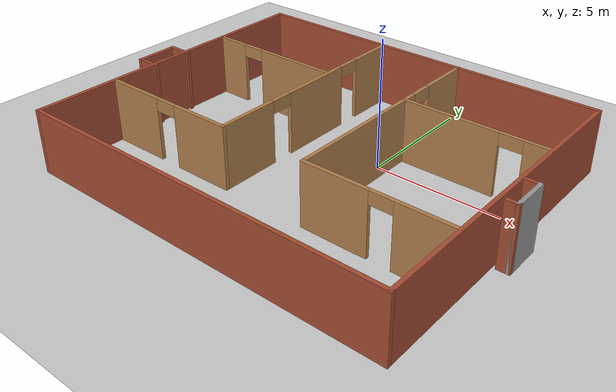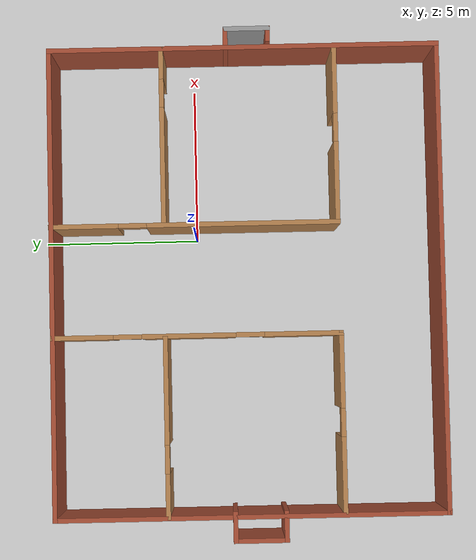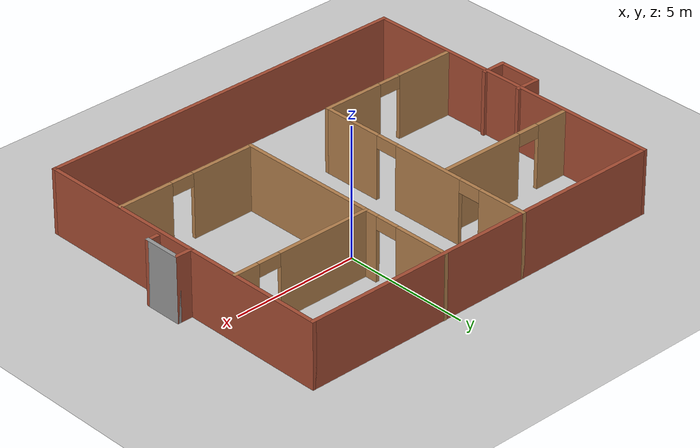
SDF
<sdf version="1.7">
 <world name="default">
  <light name="sun" type="directional">
   <pose>0 0 10 0 -0 0</pose>
   <diffuse>0.8 0.8 0.8 1</diffuse>
   <specular>0.2 0.2 0.2 1</specular>
   <attenuation>
    <range>1000</range>
    <constant>0.9</constant>
    <linear>0.01</linear>
    <quadratic>0.001</quadratic>
   </attenuation>
   <direction>-0.5 0.1 -0.9</direction>
   <spot><inner_angle>0</inner_angle><outer_angle>0</outer_angle><falloff>0</falloff></spot>
  </light>
  <model name="ground_plane">
   <static>1</static>
   <link name="link">
    <collision name="collision">
     <geometry><plane><normal>0 0 1</normal><size>100 100</size></plane></geometry>
     <surface><friction><ode><mu>100</mu><mu2>50</mu2></ode></friction></surface>
    </collision>
    <visual name="visual">
     <cast_shadows>0</cast_shadows>
     <geometry><plane><normal>0 0 1</normal><size>100 100</size></plane></geometry>
     <material>
      <script><uri>file://media/materials/scripts/gazebo.material</uri><name>Gazebo/Grey</name></script>
     </material>
    </visual>
   </link>
  </model>
  <gravity>0 0 -9.8</gravity>
  <magnetic_field>6e-06 2.3e-05 -4.2e-05</magnetic_field>
  <atmosphere type="adiabatic"/>
  <physics type="ode">
   <max_step_size>0.001</max_step_size>
   <real_time_factor>1</real_time_factor>
   <real_time_update_rate>1000</real_time_update_rate>
  </physics>
  <scene><ambient>0.4 0.4 0.4 1</ambient><background>0.7 0.7 0.7 1</background><shadows>1</shadows></scene>
  <audio><device>default</device></audio>
  <spherical_coordinates>
   <surface_model>EARTH_WGS84</surface_model>
   <latitude_deg>0</latitude_deg>
   <longitude_deg>0</longitude_deg>
   <elevation>0</elevation>
   <heading_deg>0</heading_deg>
  </spherical_coordinates>
  <model name="my_building">
   <pose>-1.51575 -1.5769 0 0 -0 0</pose>
   <link name="Wall_0">
    <collision name="Wall_0_Collision">
     <geometry><box><size>15 0.15 2.5</size></box></geometry>
     <pose>0 0 1.25 0 -0 0</pose>
    </collision>
    <visual name="Wall_0_Visual">
     <pose>0 0 1.25 0 -0 0</pose>
     <geometry><box><size>15 0.15 2.5</size></box></geometry>
     <material>
      <script><uri>file://media/materials/scripts/gazebo.material</uri><name>Gazebo/Bricks</name></script>
      <ambient>1 1 1 1</ambient>
     </material>
     <meta><layer>0</layer></meta>
    </visual>
    <pose>0.072998 6.16625 0 0 -0 0</pose>
   </link>
   <link name="Wall_1">
    <collision name="Wall_1_Collision">
     <geometry><box><size>12.5 0.15 2.5</size></box></geometry>
     <pose>0 0 1.25 0 -0 0</pose>
    </collision>
    <visual name="Wall_1_Visual">
     <pose>0 0 1.25 0 -0 0</pose>
     <geometry><box><size>12.5 0.15 2.5</size></box></geometry>
     <material>
      <script><uri>file://media/materials/scripts/gazebo.material</uri><name>Gazebo/Bricks</name></script>
      <ambient>1 1 1 1</ambient>
     </material>
     <meta><layer>0</layer></meta>
    </visual>
    <pose>7.498 -0.008745 0 0 -0 -1.5708</pose>
   </link>
   <link name="Wall_10">
    <pose>1.86526 1.63375 0 0 -0 -1.5708</pose>
    <visual name="Wall_10_Visual_0">
     <pose>-3.51823 0 1.25 0 -0 0</pose>
     <geometry><box><size>2.21353 0.15 2.5</size></box></geometry>
     <material>
      <script><uri>file://media/materials/scripts/gazebo.material</uri><name>Gazebo/Wood</name></script>
      <ambient>1 1 1 1</ambient>
     </material>
     <meta><layer>0</layer></meta>
    </visual>
    <collision name="Wall_10_Collision_0">
     <geometry><box><size>2.21353 0.15 2.5</size></box></geometry>
     <pose>-3.51823 0 1.25 0 -0 0</pose>
    </collision>
    <visual name="Wall_10_Visual_1">
     <pose>1.55676 0 1.25 0 -0 0</pose>
     <geometry><box><size>6.13647 0.15 2.5</size></box></geometry>
     <material>
      <script><uri>file://media/materials/scripts/gazebo.material</uri><name>Gazebo/Wood</name></script>
      <ambient>1 1 1 1</ambient>
     </material>
     <meta><layer>0</layer></meta>
    </visual>
    <collision name="Wall_10_Collision_1">
     <geometry><box><size>6.13647 0.15 2.5</size></box></geometry>
     <pose>1.55676 0 1.25 0 -0 0</pose>
    </collision>
    <visual name="Wall_10_Visual_2">
     <pose>-1.96147 0 2.25 0 -0 0</pose>
     <geometry><box><size>0.9 0.15 0.5</size></box></geometry>
     <material>
      <script><uri>file://media/materials/scripts/gazebo.material</uri><name>Gazebo/Wood</name></script>
      <ambient>1 1 1 1</ambient>
     </material>
     <meta><layer>0</layer></meta>
    </visual>
    <collision name="Wall_10_Collision_2">
     <geometry><box><size>0.9 0.15 0.5</size></box></geometry>
     <pose>-1.96147 0 2.25 0 -0 0</pose>
    </collision>
   </link>
   <link name="Wall_11">
    <pose>4.66526 -2.91626 0 0 -0 0</pose>
    <visual name="Wall_11_Visual_0">
     <pose>-1.55835 0 1.25 0 -0 0</pose>
     <geometry><box><size>2.63329 0.15 2.5</size></box></geometry>
     <material>
      <script><uri>file://media/materials/scripts/gazebo.material</uri><name>Gazebo/Wood</name></script>
      <ambient>1 1 1 1</ambient>
     </material>
     <meta><layer>0</layer></meta>
    </visual>
    <collision name="Wall_11_Collision_0">
     <geometry><box><size>2.63329 0.15 2.5</size></box></geometry>
     <pose>-1.55835 0 1.25 0 -0 0</pose>
    </collision>
    <visual name="Wall_11_Visual_1">
     <pose>1.76665 0 1.25 0 -0 0</pose>
     <geometry><box><size>2.21671 0.15 2.5</size></box></geometry>
     <material>
      <script><uri>file://media/materials/scripts/gazebo.material</uri><name>Gazebo/Wood</name></script>
      <ambient>1 1 1 1</ambient>
     </material>
     <meta><layer>0</layer></meta>
    </visual>
    <collision name="Wall_11_Collision_1">
     <geometry><box><size>2.21671 0.15 2.5</size></box></geometry>
     <pose>1.76665 0 1.25 0 -0 0</pose>
    </collision>
    <visual name="Wall_11_Visual_2">
     <pose>0.208291 0 2.25 0 -0 0</pose>
     <geometry><box><size>0.9 0.15 0.5</size></box></geometry>
     <material>
      <script><uri>file://media/materials/scripts/gazebo.material</uri><name>Gazebo/Wood</name></script>
      <ambient>1 1 1 1</ambient>
     </material>
     <meta><layer>0</layer></meta>
    </visual>
    <collision name="Wall_11_Collision_2">
     <geometry><box><size>0.9 0.15 0.5</size></box></geometry>
     <pose>0.208291 0 2.25 0 -0 0</pose>
    </collision>
   </link>
   <link name="Wall_13">
    <pose>4.68275 2.59828 0 0 -0 0</pose>
    <visual name="Wall_13_Visual_0">
     <pose>-0.963693 0 1.25 0 -0 0</pose>
     <geometry><box><size>3.82261 0.15 2.5</size></box></geometry>
     <material>
      <script><uri>file://media/materials/scripts/gazebo.material</uri><name>Gazebo/Wood</name></script>
      <ambient>1 1 1 1</ambient>
     </material>
     <meta><layer>0</layer></meta>
    </visual>
    <collision name="Wall_13_Collision_0">
     <geometry><box><size>3.82261 0.15 2.5</size></box></geometry>
     <pose>-0.963693 0 1.25 0 -0 0</pose>
    </collision>
    <visual name="Wall_13_Visual_1">
     <pose>2.36131 0 1.25 0 -0 0</pose>
     <geometry><box><size>1.02738 0.15 2.5</size></box></geometry>
     <material>
      <script><uri>file://media/materials/scripts/gazebo.material</uri><name>Gazebo/Wood</name></script>
      <ambient>1 1 1 1</ambient>
     </material>
     <meta><layer>0</layer></meta>
    </visual>
    <collision name="Wall_13_Collision_1">
     <geometry><box><size>1.02738 0.15 2.5</size></box></geometry>
     <pose>2.36131 0 1.25 0 -0 0</pose>
    </collision>
    <visual name="Wall_13_Visual_2">
     <pose>1.39762 0 2.25 0 -0 0</pose>
     <geometry><box><size>0.9 0.15 0.5</size></box></geometry>
     <material>
      <script><uri>file://media/materials/scripts/gazebo.material</uri><name>Gazebo/Wood</name></script>
      <ambient>1 1 1 1</ambient>
     </material>
     <meta><layer>0</layer></meta>
    </visual>
    <collision name="Wall_13_Collision_2">
     <geometry><box><size>0.9 0.15 0.5</size></box></geometry>
     <pose>1.39762 0 2.25 0 -0 0</pose>
    </collision>
   </link>
   <link name="Wall_15">
    <collision name="Wall_15_Collision">
     <geometry><box><size>0.75 0.15 2.5</size></box></geometry>
     <pose>0 0 1.25 0 -0 0</pose>
    </collision>
    <visual name="Wall_15_Visual">
     <pose>0 0 1.25 0 -0 0</pose>
     <geometry><box><size>0.75 0.15 2.5</size></box></geometry>
     <material>
      <script><uri>file://media/materials/scripts/gazebo.material</uri><name>Gazebo/Bricks</name></script>
      <ambient>1 1 1 1</ambient>
     </material>
     <meta><layer>0</layer></meta>
    </visual>
    <pose>7.79706 0.534455 0 0 -0 0</pose>
   </link>
   <link name="Wall_16">
    <collision name="Wall_16_Collision">
     <geometry><box><size>1.5 0.15 2.5</size></box></geometry>
     <pose>0 0 1.25 0 -0 0</pose>
    </collision>
    <visual name="Wall_16_Visual">
     <pose>0 0 1.25 0 -0 0</pose>
     <geometry><box><size>1.5 0.15 2.5</size></box></geometry>
     <material>
      <script><uri>file://media/materials/scripts/gazebo.material</uri><name>Gazebo/Grey</name></script>
      <ambient>1 1 1 1</ambient>
     </material>
     <meta><layer>0</layer></meta>
    </visual>
    <pose>8.09706 -0.140545 0 0 -0 -1.5708</pose>
   </link>
   <link name="Wall_17">
    <collision name="Wall_17_Collision">
     <geometry><box><size>0.5 0.15 2.5</size></box></geometry>
     <pose>0 0 1.25 0 -0 0</pose>
    </collision>
    <visual name="Wall_17_Visual">
     <pose>0 0 1.25 0 -0 0</pose>
     <geometry><box><size>0.5 0.15 2.5</size></box></geometry>
     <material>
      <script><uri>file://media/materials/scripts/gazebo.material</uri><name>Gazebo/Bricks</name></script>
      <ambient>1 1 1 1</ambient>
     </material>
     <meta><layer>0</layer></meta>
    </visual>
    <pose>7.92206 -0.815545 0 0 -0 3.14159</pose>
   </link>
   <link name="Wall_2">
    <collision name="Wall_2_Collision">
     <geometry><box><size>15 0.15 2.5</size></box></geometry>
     <pose>0 0 1.25 0 -0 0</pose>
    </collision>
    <visual name="Wall_2_Visual">
     <pose>0 0 1.25 0 -0 0</pose>
     <geometry><box><size>15 0.15 2.5</size></box></geometry>
     <material>
      <script><uri>file://media/materials/scripts/gazebo.material</uri><name>Gazebo/Bricks</name></script>
      <ambient>1 1 1 1</ambient>
     </material>
     <meta><layer>0</layer></meta>
    </visual>
    <pose>0.072998 -6.18375 0 0 -0 3.14159</pose>
   </link>
   <link name="Wall_21">
    <collision name="Wall_21_Collision">
     <geometry><box><size>1 0.15 2.5</size></box></geometry>
     <pose>0 0 1.25 0 -0 0</pose>
    </collision>
    <visual name="Wall_21_Visual">
     <pose>0 0 1.25 0 -0 0</pose>
     <geometry><box><size>1 0.15 2.5</size></box></geometry>
     <material>
      <script><uri>file://media/materials/scripts/gazebo.material</uri><name>Gazebo/Bricks</name></script>
      <ambient>1 1 1 1</ambient>
     </material>
     <meta><layer>0</layer></meta>
    </visual>
    <pose>-7.67206 0.516965 0 0 -0 3.14159</pose>
   </link>
   <link name="Wall_22">
    <collision name="Wall_22_Collision">
     <geometry><box><size>1.75 0.15 2.5</size></box></geometry>
     <pose>0 0 1.25 0 -0 0</pose>
    </collision>
    <visual name="Wall_22_Visual">
     <pose>0 0 1.25 0 -0 0</pose>
     <geometry><box><size>1.75 0.15 2.5</size></box></geometry>
     <material>
      <script><uri>file://media/materials/scripts/gazebo.material</uri><name>Gazebo/Bricks</name></script>
      <ambient>1 1 1 1</ambient>
     </material>
     <meta><layer>0</layer></meta>
    </visual>
    <pose>-8.09706 -0.283035 0 0 -0 -1.5708</pose>
   </link>
   <link name="Wall_23">
    <collision name="Wall_23_Collision">
     <geometry><box><size>1 0.15 2.5</size></box></geometry>
     <pose>0 0 1.25 0 -0 0</pose>
    </collision>
    <visual name="Wall_23_Visual">
     <pose>0 0 1.25 0 -0 0</pose>
     <geometry><box><size>1 0.15 2.5</size></box></geometry>
     <material>
      <script><uri>file://media/materials/scripts/gazebo.material</uri><name>Gazebo/Bricks</name></script>
      <ambient>1 1 1 1</ambient>
     </material>
     <meta><layer>0</layer></meta>
    </visual>
    <pose>-7.67206 -1.08303 0 0 -0 0</pose>
   </link>
   <link name="Wall_3">
    <collision name="Wall_3_Collision">
     <geometry><box><size>12.5 0.15 2.5</size></box></geometry>
     <pose>0 0 1.25 0 -0 0</pose>
    </collision>
    <visual name="Wall_3_Visual">
     <pose>0 0 1.25 0 -0 0</pose>
     <geometry><box><size>12.5 0.15 2.5</size></box></geometry>
     <material>
      <script><uri>file://media/materials/scripts/gazebo.material</uri><name>Gazebo/Bricks</name></script>
      <ambient>1 1 1 1</ambient>
     </material>
     <meta><layer>0</layer></meta>
    </visual>
    <pose>-7.352 -0.008745 0 0 -0 1.5708</pose>
   </link>
   <link name="Wall_5">
    <pose>-4.51702 2.61577 0 0 -0 0</pose>
    <visual name="Wall_5_Visual_0">
     <pose>-2.16176 0 1.25 0 -0 0</pose>
     <geometry><box><size>1.42648 0.15 2.5</size></box></geometry>
     <material>
      <script><uri>file://media/materials/scripts/gazebo.material</uri><name>Gazebo/Wood</name></script>
      <ambient>1 1 1 1</ambient>
     </material>
     <meta><layer>0</layer></meta>
    </visual>
    <collision name="Wall_5_Collision_0">
     <geometry><box><size>1.42648 0.15 2.5</size></box></geometry>
     <pose>-2.16176 0 1.25 0 -0 0</pose>
    </collision>
    <visual name="Wall_5_Visual_1">
     <pose>1.16324 0 1.25 0 -0 0</pose>
     <geometry><box><size>3.42352 0.15 2.5</size></box></geometry>
     <material>
      <script><uri>file://media/materials/scripts/gazebo.material</uri><name>Gazebo/Wood</name></script>
      <ambient>1 1 1 1</ambient>
     </material>
     <meta><layer>0</layer></meta>
    </visual>
    <collision name="Wall_5_Collision_1">
     <geometry><box><size>3.42352 0.15 2.5</size></box></geometry>
     <pose>1.16324 0 1.25 0 -0 0</pose>
    </collision>
    <visual name="Wall_5_Visual_2">
     <pose>-0.998524 0 2.25 0 -0 0</pose>
     <geometry><box><size>0.9 0.15 0.5</size></box></geometry>
     <material>
      <script><uri>file://media/materials/scripts/gazebo.material</uri><name>Gazebo/Wood</name></script>
      <ambient>1 1 1 1</ambient>
     </material>
     <meta><layer>0</layer></meta>
    </visual>
    <collision name="Wall_5_Collision_2">
     <geometry><box><size>0.9 0.15 0.5</size></box></geometry>
     <pose>-0.998524 0 2.25 0 -0 0</pose>
    </collision>
   </link>
   <link name="Wall_7">
    <pose>-1.65024 1.61625 0 0 -0 -1.5708</pose>
    <visual name="Wall_7_Visual_0">
     <pose>-3.63192 0 1.25 0 -0 0</pose>
     <geometry><box><size>1.98616 0.15 2.5</size></box></geometry>
     <material>
      <script><uri>file://media/materials/scripts/gazebo.material</uri><name>Gazebo/Wood</name></script>
      <ambient>1 1 1 1</ambient>
     </material>
     <meta><layer>0</layer></meta>
    </visual>
    <collision name="Wall_7_Collision_0">
     <geometry><box><size>1.98616 0.15 2.5</size></box></geometry>
     <pose>-3.63192 0 1.25 0 -0 0</pose>
    </collision>
    <visual name="Wall_7_Visual_1">
     <pose>-0.25619 0 1.25 0 -0 0</pose>
     <geometry><box><size>2.9653 0.15 2.5</size></box></geometry>
     <material>
      <script><uri>file://media/materials/scripts/gazebo.material</uri><name>Gazebo/Wood</name></script>
      <ambient>1 1 1 1</ambient>
     </material>
     <meta><layer>0</layer></meta>
    </visual>
    <collision name="Wall_7_Collision_1">
     <geometry><box><size>2.9653 0.15 2.5</size></box></geometry>
     <pose>-0.25619 0 1.25 0 -0 0</pose>
    </collision>
    <visual name="Wall_7_Visual_2">
     <pose>3.37573 0 1.25 0 -0 0</pose>
     <geometry><box><size>2.49854 0.15 2.5</size></box></geometry>
     <material>
      <script><uri>file://media/materials/scripts/gazebo.material</uri><name>Gazebo/Wood</name></script>
      <ambient>1 1 1 1</ambient>
     </material>
     <meta><layer>0</layer></meta>
    </visual>
    <collision name="Wall_7_Collision_2">
     <geometry><box><size>2.49854 0.15 2.5</size></box></geometry>
     <pose>3.37573 0 1.25 0 -0 0</pose>
    </collision>
    <visual name="Wall_7_Visual_3">
     <pose>-2.18884 0 2.25 0 -0 0</pose>
     <geometry><box><size>0.9 0.15 0.5</size></box></geometry>
     <material>
      <script><uri>file://media/materials/scripts/gazebo.material</uri><name>Gazebo/Wood</name></script>
      <ambient>1 1 1 1</ambient>
     </material>
     <meta><layer>0</layer></meta>
    </visual>
    <collision name="Wall_7_Collision_3">
     <geometry><box><size>0.9 0.15 0.5</size></box></geometry>
     <pose>-2.18884 0 2.25 0 -0 0</pose>
    </collision>
    <visual name="Wall_7_Visual_4">
     <pose>1.67646 0 2.25 0 -0 0</pose>
     <geometry><box><size>0.9 0.15 0.5</size></box></geometry>
     <material>
      <script><uri>file://media/materials/scripts/gazebo.material</uri><name>Gazebo/Wood</name></script>
      <ambient>1 1 1 1</ambient>
     </material>
     <meta><layer>0</layer></meta>
    </visual>
    <collision name="Wall_7_Collision_4">
     <geometry><box><size>0.9 0.15 0.5</size></box></geometry>
     <pose>1.67646 0 2.25 0 -0 0</pose>
    </collision>
   </link>
   <link name="Wall_8">
    <pose>-4.45024 -2.93375 0 0 -0 3.14159</pose>
    <visual name="Wall_8_Visual_0">
     <pose>-1.65455 0 1.25 0 -0 0</pose>
     <geometry><box><size>2.4409 0.15 2.5</size></box></geometry>
     <material>
      <script><uri>file://media/materials/scripts/gazebo.material</uri><name>Gazebo/Wood</name></script>
      <ambient>1 1 1 1</ambient>
     </material>
     <meta><layer>0</layer></meta>
    </visual>
    <collision name="Wall_8_Collision_0">
     <geometry><box><size>2.4409 0.15 2.5</size></box></geometry>
     <pose>-1.65455 0 1.25 0 -0 0</pose>
    </collision>
    <visual name="Wall_8_Visual_1">
     <pose>1.67045 0 1.25 0 -0 0</pose>
     <geometry><box><size>2.4091 0.15 2.5</size></box></geometry>
     <material>
      <script><uri>file://media/materials/scripts/gazebo.material</uri><name>Gazebo/Wood</name></script>
      <ambient>1 1 1 1</ambient>
     </material>
     <meta><layer>0</layer></meta>
    </visual>
    <collision name="Wall_8_Collision_1">
     <geometry><box><size>2.4091 0.15 2.5</size></box></geometry>
     <pose>1.67045 0 1.25 0 -0 0</pose>
    </collision>
    <visual name="Wall_8_Visual_2">
     <pose>0.0159 0 2.25 0 -0 0</pose>
     <geometry><box><size>0.9 0.15 0.5</size></box></geometry>
     <material>
      <script><uri>file://media/materials/scripts/gazebo.material</uri><name>Gazebo/Wood</name></script>
      <ambient>1 1 1 1</ambient>
     </material>
     <meta><layer>0</layer></meta>
    </visual>
    <collision name="Wall_8_Collision_2">
     <geometry><box><size>0.9 0.15 0.5</size></box></geometry>
     <pose>0.0159 0 2.25 0 -0 0</pose>
    </collision>
   </link>
   <static>1</static>
  </model>
 </world>
</sdf>
